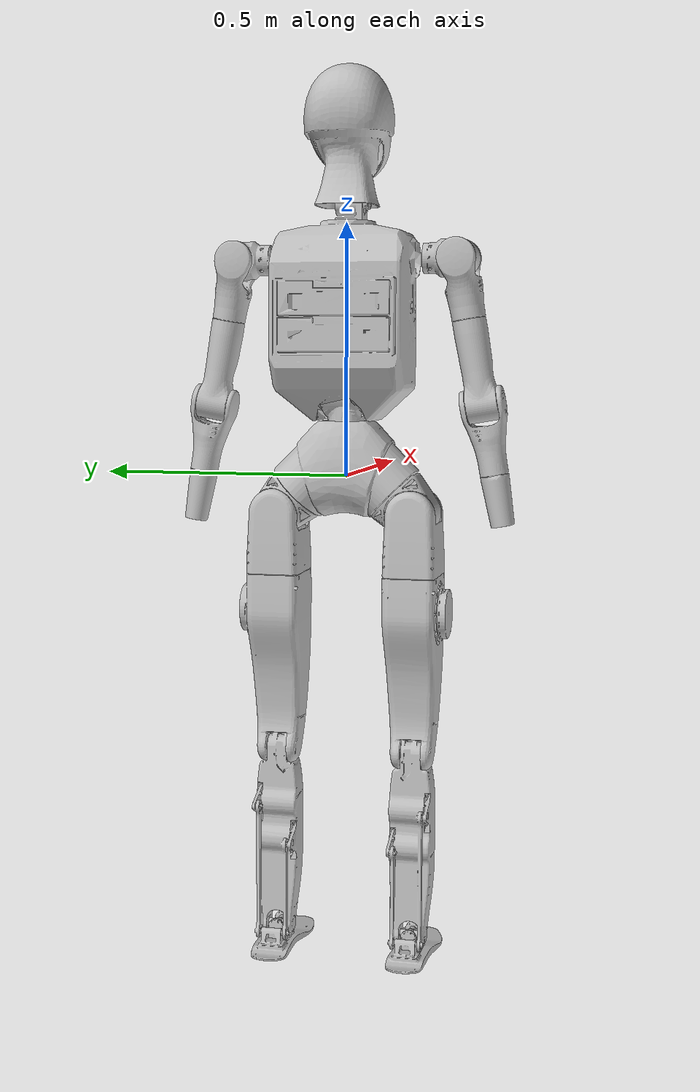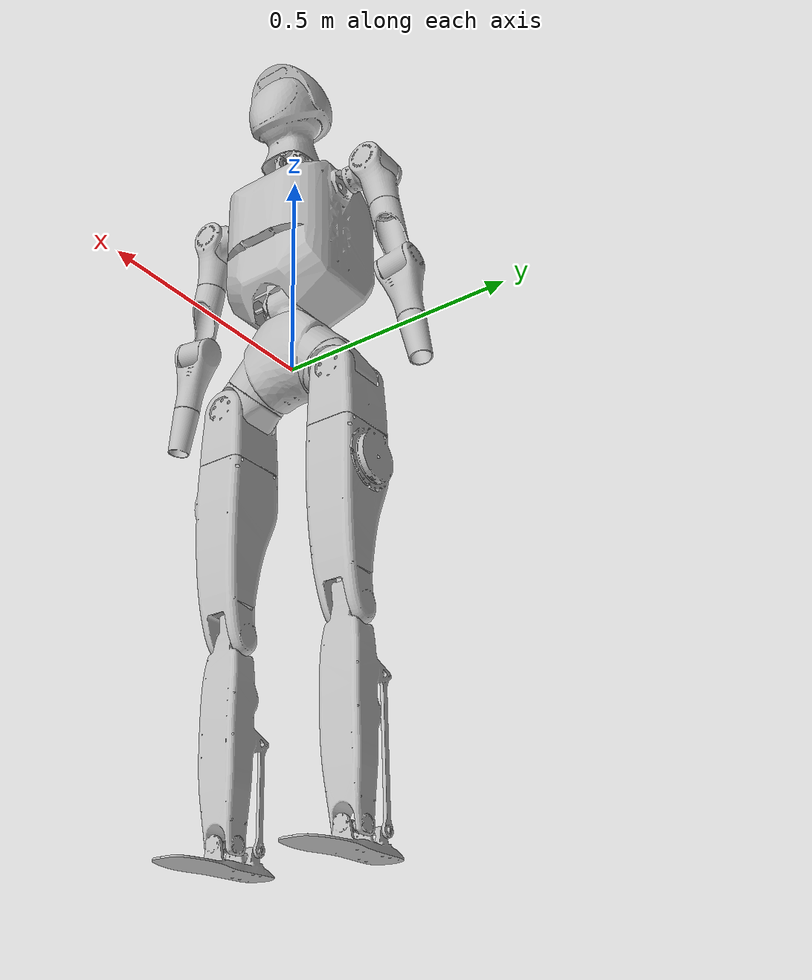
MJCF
<mujoco model="Z01">
  <compiler angle="radian" meshdir="assets/" autolimits="true"/>
  <statistic center="1.0 0.7 1.0" extent="0.8"/>
  <option integrator="implicitfast"/>
  <default>
    <geom contype="2" conaffinity="1"/>
  </default>
  <visual>
    <headlight diffuse="0.6 0.6 0.6" ambient="0.1 0.1 0.1" specular="0.9 0.9 0.9"/>
    <rgba haze="0.15 0.25 0.35 1"/>
    <global azimuth="-140" elevation="-20"/>
  </visual>

  <asset>
    <mesh name="base_link" file="base_link.STL"/>
    <mesh name="left_hip_pitch_link" file="left_hip_pitch_link.STL"/>
    <mesh name="left_hip_roll_link" file="left_hip_roll_link.STL"/>
    <mesh name="left_hip_yaw_link" file="left_hip_yaw_link.STL"/>
    <mesh name="left_knee_pitch_link" file="left_knee_pitch_link.STL"/>
    <mesh name="left_ankle_pitch_link" file="left_ankle_pitch_link.STL"/>
    <mesh name="left_ankle_roll_link" file="left_ankle_roll_link.STL"/>
    <mesh name="right_hip_pitch_link" file="right_hip_pitch_link.STL"/>
    <mesh name="right_hip_roll_link" file="right_hip_roll_link.STL"/>
    <mesh name="right_hip_yaw_link" file="right_hip_yaw_link.STL"/>
    <mesh name="right_knee_pitch_link" file="right_knee_pitch_link.STL"/>
    <mesh name="right_ankle_pitch_link" file="right_ankle_pitch_link.STL"/>
    <mesh name="right_ankle_roll_link" file="right_ankle_roll_link.STL"/>
    <mesh name="waist_yaw_link" file="waist_yaw_link.STL"/>
    <mesh name="waist_pitch_link" file="waist_pitch_link.STL"/>
    <mesh name="left_shoulder_pitch_link" file="left_shoulder_pitch_link.STL"/>
    <mesh name="left_shoulder_roll_link" file="left_shoulder_roll_link.STL"/>
    <mesh name="left_elbow_yaw_link" file="left_elbow_yaw_link.STL"/>
    <mesh name="left_elbow_pitch_link" file="left_elbow_pitch_link.STL"/>
    <mesh name="left_wrist_yaw_link" file="left_wrist_yaw_link.STL"/>
    <mesh name="right_shoulder_pitch_link" file="right_shoulder_pitch_link.STL"/>
    <mesh name="right_shoulder_roll_link" file="right_shoulder_roll_link.STL"/>
    <mesh name="right_elbow_yaw_link" file="right_elbow_yaw_link.STL"/>
    <mesh name="right_elbow_pitch_link" file="right_elbow_pitch_link.STL"/>
    <mesh name="right_wrist_yaw_link" file="right_wrist_yaw_link.STL"/>
    <mesh name="head_yaw_link" file="head_yaw_link.STL"/>
    <mesh name="head_pitch_link" file="head_pitch_link.STL"/>
    <mesh name="head_roll_link" file="head_roll_link.STL"/>
  </asset>

  <worldbody>
    <body name="base_link">
      <inertial pos="-5.2031e-05 -2.0533e-06 0.0020481" quat="0.705827 0.708372 -0.00255144 0.00343983" mass="5.0523" diaginertia="0.0188432 0.0160028 0.0124069"/>
      <joint name="floating_base_joint" type="free"/>
      <geom type="mesh" contype="0" conaffinity="0" group="1" density="0" rgba="0.75294 0.75294 0.75294 1" mesh="base_link"/>
      <geom name="base_link_collision" type="mesh" rgba="0.75294 0.75294 0.75294 1" mesh="base_link"/>
      <site name="base_imu_site" pos="0 0 0" size="0.01"/>
      <body name="left_hip_pitch_link" pos="0 0.0959544 -0.0322644" quat="0.92388 -0.382683 0 0">
        <inertial pos="0.00545388 0.0462565 7.28028e-05" quat="0.999352 0.0142492 0.00230312 0.0329881" mass="2.13147" diaginertia="0.00334989 0.00265389 0.00222559"/>
        <joint name="left_hip_pitch" pos="0 0 0" axis="0 1 0" range="-1.57 1.57" actuatorfrcrange="-330 330"/>
        <geom type="mesh" contype="0" conaffinity="0" group="1" density="0" rgba="0.752941 0.752941 0.752941 1" mesh="left_hip_pitch_link"/>
        <geom name="left_hip_pitch_link_collision" type="mesh" rgba="0.752941 0.752941 0.752941 1" mesh="left_hip_pitch_link"/>
        <body name="left_hip_roll_link" pos="0 0.0593 0" quat="0.92388 0.382683 0 0">
          <inertial pos="-0.000641176 0.00052454 -0.0618598" quat="0.99998 0.00342601 0.00520615 0.00104279" mass="3.11222" diaginertia="0.00735623 0.00586125 0.0038922"/>
          <joint name="left_hip_roll" pos="0 0 0" axis="1 0 0" range="-0.17 0.78" actuatorfrcrange="-70 70"/>
          <geom type="mesh" contype="0" conaffinity="0" group="1" density="0" rgba="0.752941 0.752941 0.752941 1" mesh="left_hip_roll_link"/>
          <geom name="left_hip_roll_link_collision" type="mesh" rgba="0.752941 0.752941 0.752941 1" mesh="left_hip_roll_link"/>
          <body name="left_hip_yaw_link" pos="0 0 -0.119">
            <inertial pos="0.00420803 0.0049643 -0.149584" quat="0.709649 0.0185723 0.0248893 0.703871" mass="5.39307" diaginertia="0.0522609 0.0466793 0.00861801"/>
            <joint name="left_hip_yaw" pos="0 0 0" axis="0 0 1" range="-0.52 0.52" actuatorfrcrange="-70 70"/>
            <geom type="mesh" contype="0" conaffinity="0" group="1" density="0" rgba="0.752941 0.752941 0.752941 1" mesh="left_hip_yaw_link"/>
            <geom name="left_hip_yaw_link_collision" type="mesh" rgba="0.752941 0.752941 0.752941 1" mesh="left_hip_yaw_link"/>
            <body name="left_knee_pitch_link" pos="0 0 -0.363">
              <inertial pos="-0.00317674 0.000243977 -0.166286" quat="0.705967 -0.00249688 -0.00197445 0.708237" mass="4.85718" diaginertia="0.0259128 0.0251601 0.00202454"/>
              <joint name="left_knee_pitch" pos="0 0 0" axis="0 1 0" range="-1.57 0" actuatorfrcrange="-330 330"/>
              <geom type="mesh" contype="0" conaffinity="0" group="1" density="0" rgba="0.752941 0.752941 0.752941 1" mesh="left_knee_pitch_link"/>
              <geom name="left_knee_pitch_link_collision" type="mesh" rgba="0.752941 0.752941 0.752941 1" mesh="left_knee_pitch_link"/>
              <body name="left_ankle_pitch_link" pos="0 0 -0.374">
                <inertial pos="2.08791e-09 1.7862e-09 0" quat="0 0.707107 0 0.707107" mass="0.125704" diaginertia="3.44419e-05 2.12238e-05 1.66569e-05"/>
                <joint name="left_ankle_pitch" pos="0 0 0" axis="0 1 0" range="-0.68 0.68" actuatorfrcrange="-75 75"/>
                <geom type="mesh" contype="0" conaffinity="0" group="1" density="0" rgba="0.752941 0.752941 0.752941 1" mesh="left_ankle_pitch_link"/>
                <geom name="left_ankle_pitch_link_collision" type="mesh" rgba="0.752941 0.752941 0.752941 1" mesh="left_ankle_pitch_link"/>
                <body name="left_ankle_roll_link">
                  <inertial pos="-0.0104011 0.000724835 -0.0257983" quat="-0.00175044 0.699096 0.00517645 0.715007" mass="0.957892" diaginertia="0.00231277 0.00204591 0.000410361"/>
                  <joint name="left_ankle_roll" pos="0 0 0" axis="1 0 0" range="-0.25 0.25" actuatorfrcrange="-75 75"/>
                  <geom type="mesh" contype="0" conaffinity="0" group="1" density="0" rgba="0.752941 0.752941 0.752941 1" mesh="left_ankle_roll_link"/>
                  <geom name="left_ankle_roll_link_collision" type="mesh" rgba="0.752941 0.752941 0.752941 1" mesh="left_ankle_roll_link"/>
                  <site name="left_ankle_site" pos="0 0 0" size="0.01"/>
                </body>
              </body>
            </body>
          </body>
        </body>
      </body>
      <body name="right_hip_pitch_link" pos="0 -0.0959544 -0.0322644" quat="0.92388 0.382683 0 0">
        <inertial pos="0.00542316 -0.0462208 7.08223e-05" quat="0.999354 -0.0119464 0.00223516 -0.0338194" mass="2.13366" diaginertia="0.00335098 0.0026569 0.00222699"/>
        <joint name="right_hip_pitch" pos="0 0 0" axis="0 1 0" range="-1.57 1.57" actuatorfrcrange="-330 330"/>
        <geom type="mesh" contype="0" conaffinity="0" group="1" density="0" rgba="0.752941 0.752941 0.752941 1" mesh="right_hip_pitch_link"/>
        <geom name="right_hip_pitch_link_collision" type="mesh" rgba="0.752941 0.752941 0.752941 1" mesh="right_hip_pitch_link"/>
        <body name="right_hip_roll_link" pos="0 -0.0593 0" quat="0.92388 -0.382683 0 0">
          <inertial pos="-0.000641017 -0.000524617 -0.0618597" quat="0.99998 -0.00342453 0.00520239 -0.000641927" mass="3.11226" diaginertia="0.00735686 0.00586083 0.00389221"/>
          <joint name="right_hip_roll" pos="0 0 0" axis="1 0 0" range="-0.78 0.17" actuatorfrcrange="-70 70"/>
          <geom type="mesh" contype="0" conaffinity="0" group="1" density="0" rgba="0.752941 0.752941 0.752941 1" mesh="right_hip_roll_link"/>
          <geom name="right_hip_roll_link_collision" type="mesh" rgba="0.752941 0.752941 0.752941 1" mesh="right_hip_roll_link"/>
          <body name="right_hip_yaw_link" pos="0 0 -0.119">
            <inertial pos="0.00420844 -0.00496649 -0.149581" quat="0.703874 0.0248999 0.0185816 0.709645" mass="5.39294" diaginertia="0.0522607 0.0466788 0.00861846"/>
            <joint name="right_hip_yaw" pos="0 0 0" axis="0 0 1" range="-0.52 0.52" actuatorfrcrange="-70 70"/>
            <geom type="mesh" contype="0" conaffinity="0" group="1" density="0" rgba="0.752941 0.752941 0.752941 1" mesh="right_hip_yaw_link"/>
            <geom name="right_hip_yaw_link_collision" type="mesh" rgba="0.752941 0.752941 0.752941 1" mesh="right_hip_yaw_link"/>
            <body name="right_knee_pitch_link" pos="0 0 -0.363">
              <inertial pos="-0.00317261 -0.000244187 -0.166286" quat="0.708245 -0.00197035 -0.00248779 0.70596" mass="4.85728" diaginertia="0.0259141 0.0251615 0.00202439"/>
              <joint name="right_knee_pitch" pos="0 0 0" axis="0 1 0" range="0 1.57" actuatorfrcrange="-330 330"/>
              <geom type="mesh" contype="0" conaffinity="0" group="1" density="0" rgba="0.752941 0.752941 0.752941 1" mesh="right_knee_pitch_link"/>
              <geom name="right_knee_pitch_link_collision" type="mesh" rgba="0.752941 0.752941 0.752941 1" mesh="right_knee_pitch_link"/>
              <body name="right_ankle_pitch_link" pos="0 0 -0.374">
                <inertial pos="2.08789e-09 -1.68818e-09 0" quat="0 0.707107 0 0.707107" mass="0.125704" diaginertia="3.44419e-05 2.12238e-05 1.66569e-05"/>
                <joint name="right_ankle_pitch" pos="0 0 0" axis="0 1 0" range="-0.68 0.68" actuatorfrcrange="-75 75"/>
                <geom type="mesh" contype="0" conaffinity="0" group="1" density="0" rgba="0.752941 0.752941 0.752941 1" mesh="right_ankle_pitch_link"/>
                <geom name="right_ankle_pitch_link_collision" type="mesh" rgba="0.752941 0.752941 0.752941 1" mesh="right_ankle_pitch_link"/>
                <body name="right_ankle_roll_link">
                  <inertial pos="-0.0104043 -0.000724471 -0.0257983" quat="0.00175308 0.699094 -0.00518639 0.715009" mass="0.957884" diaginertia="0.00231219 0.00204533 0.000410363"/>
                  <joint name="right_ankle_roll" pos="0 0 0" axis="1 0 0" range="-0.25 0.25" actuatorfrcrange="-75 75"/>
                  <geom type="mesh" contype="0" conaffinity="0" group="1" density="0" rgba="0.752941 0.752941 0.752941 1" mesh="right_ankle_roll_link"/>
                  <geom name="right_ankle_roll_link_collision" type="mesh" rgba="0.752941 0.752941 0.752941 1" mesh="right_ankle_roll_link"/>
                  <site name="right_ankle_site" pos="0 0 0" size="0.01"/>
                </body>
              </body>
            </body>
          </body>
        </body>
      </body>
      <body name="waist_yaw_link" pos="0 0 0.109061">
        <inertial pos="0.00064155 -0.0017701 0.047829" quat="0.698929 0.142762 -0.123809 0.689774" mass="0.79875" diaginertia="0.000917587 0.000813453 0.00071491"/>
        <joint name="waist_yaw" pos="0 0 0" axis="0 0 1" range="-1.57 1.57" actuatorfrcrange="-102 102"/>
        <geom type="mesh" contype="0" conaffinity="0" group="1" density="0" rgba="0.75294 0.75294 0.75294 1" mesh="waist_yaw_link"/>
        <geom name="waist_yaw_link_collision" type="mesh" rgba="0.75294 0.75294 0.75294 1" mesh="waist_yaw_link"/>
        <body name="waist_pitch_link" pos="0 0 0.055">
          <inertial pos="-0.00180836 0.00191888 0.196273" quat="0.500421 0.501947 -0.499168 0.498458" mass="14.6195" diaginertia="0.0448734 0.0369676 0.0223867"/>
          <joint name="waist_pitch" pos="0 0 0" axis="0 1 0" range="-0.78 0.78" actuatorfrcrange="-102 102"/>
          <geom type="mesh" contype="0" conaffinity="0" group="1" density="0" rgba="0.752941 0.752941 0.752941 1" mesh="waist_pitch_link"/>
          <geom name="waist_pitch_link_collision" type="mesh" rgba="0.752941 0.752941 0.752941 1" mesh="waist_pitch_link"/>
          <body name="left_shoulder_pitch_link" pos="0 0.164 0.2634">
            <inertial pos="-0.00146791 0.036516 -0.00015766" quat="0.704665 0.708713 0.0245326 0.023894" mass="0.310709" diaginertia="0.000378752 0.000298216 0.000273607"/>
            <joint name="left_shoulder_pitch" pos="0 0 0" axis="0 1 0" range="-2.09 1.57" actuatorfrcrange="-66 66"/>
            <geom type="mesh" contype="0" conaffinity="0" group="1" density="0" rgba="0.752941 0.752941 0.752941 1" mesh="left_shoulder_pitch_link"/>
            <geom name="left_shoulder_pitch_link_collision" type="mesh" rgba="0.752941 0.752941 0.752941 1" mesh="left_shoulder_pitch_link"/>
            <body name="left_shoulder_roll_link" pos="0 0.058 0" quat="0.996195 0.0871557 0 0">
              <inertial pos="0.00112649 0.00104716 -0.0410045" quat="0.990167 -0.00534074 -0.13944 0.00990619" mass="0.486656" diaginertia="0.00104983 0.000968381 0.00035721"/>
              <joint name="left_shoulder_roll" pos="0 0 0" axis="1 0 0" range="-0.1 2.96" actuatorfrcrange="-66 66"/>
              <geom type="mesh" contype="0" conaffinity="0" group="1" density="0" rgba="0.752941 0.752941 0.752941 1" mesh="left_shoulder_roll_link"/>
              <geom name="left_shoulder_roll_link_collision" type="mesh" rgba="0.752941 0.752941 0.752941 1" mesh="left_shoulder_roll_link"/>
              <body name="left_elbow_yaw_link" pos="0 0 -0.1281">
                <inertial pos="-0.00554941 -0.000271139 -0.089972" quat="0.823299 -0.0172167 -0.00178683 0.567343" mass="0.410618" diaginertia="0.00177393 0.001768 0.00031978"/>
                <joint name="left_elbow_yaw" pos="0 0 0" axis="0 0 1" range="-1.57 1.57" actuatorfrcrange="-34 34"/>
                <geom type="mesh" contype="0" conaffinity="0" group="1" density="0" rgba="0.752941 0.752941 0.752941 1" mesh="left_elbow_yaw_link"/>
                <geom name="left_elbow_yaw_link_collision" type="mesh" rgba="0.752941 0.752941 0.752941 1" mesh="left_elbow_yaw_link"/>
                <body name="left_elbow_pitch_link" pos="0 0 -0.1609">
                  <inertial pos="-6.26968e-09 0.000558933 -0.0598087" quat="0.70249 0.0808427 -0.0808395 0.702451" mass="0.514285" diaginertia="0.00080022 0.000750395 0.000252897"/>
                  <joint name="left_elbow_pitch" pos="0 0 0" axis="0 1 0" range="-2.27 1.57" actuatorfrcrange="-34 34"/>
                  <geom type="mesh" contype="0" conaffinity="0" group="1" density="0" rgba="0.752941 0.752941 0.752941 1" mesh="left_elbow_pitch_link"/>
                  <geom name="left_elbow_pitch_link_collision" type="mesh" rgba="0.752941 0.752941 0.752941 1" mesh="left_elbow_pitch_link"/>
                  <body name="left_wrist_yaw_link" pos="0 0 -0.1415">
                    <inertial pos="5.68108e-12 0 -0.035612" mass="0.200063" diaginertia="0.000205855 0.000205855 0.000110163"/>
                    <joint name="left_wrist_yaw" pos="0 0 0" axis="0 0 1" range="-1.57 1.57" actuatorfrcrange="-11 11"/>
                    <geom type="mesh" contype="0" conaffinity="0" group="1" density="0" rgba="0.752941 0.752941 0.752941 1" mesh="left_wrist_yaw_link"/>
                    <geom name="left_wrist_yaw_link_collision" type="mesh" rgba="0.752941 0.752941 0.752941 1" mesh="left_wrist_yaw_link"/>
                  </body>
                </body>
              </body>
            </body>
          </body>
          <body name="right_shoulder_pitch_link" pos="0 -0.164 0.2634">
            <inertial pos="-0.00146791 -0.036516 0.00015766" quat="0.704665 0.708713 -0.0245326 -0.023894" mass="0.310709" diaginertia="0.000378752 0.000298216 0.000273607"/>
            <joint name="right_shoulder_pitch" pos="0 0 0" axis="0 1 0" range="-1.57 2.27" actuatorfrcrange="-66 66"/>
            <geom type="mesh" contype="0" conaffinity="0" group="1" density="0" rgba="0.752941 0.752941 0.752941 1" mesh="right_shoulder_pitch_link"/>
            <geom name="right_shoulder_pitch_link_collision" type="mesh" rgba="0.752941 0.752941 0.752941 1" mesh="right_shoulder_pitch_link"/>
            <body name="right_shoulder_roll_link" pos="0 -0.058 0" quat="0.996195 -0.0871557 0 0">
              <inertial pos="0.0011264 -0.00101547 -0.0410045" quat="0.990167 0.00534115 -0.139439 -0.00990621" mass="0.486655" diaginertia="0.00104983 0.000968379 0.00035721"/>
              <joint name="right_shoulder_roll" pos="0 0 0" axis="1 0 0" range="-2.96 0.1" actuatorfrcrange="-66 66"/>
              <geom type="mesh" contype="0" conaffinity="0" group="1" density="0" rgba="0.752941 0.752941 0.752941 1" mesh="right_shoulder_roll_link"/>
              <geom name="right_shoulder_roll_link_collision" type="mesh" rgba="0.752941 0.752941 0.752941 1" mesh="right_shoulder_roll_link"/>
              <body name="right_elbow_yaw_link" pos="0 5e-05 -0.1281">
                <inertial pos="-0.0056495 0.000271246 -0.0903461" quat="0.560412 -0.00164475 -0.0171167 0.828036" mass="0.41062" diaginertia="0.00177396 0.00176842 0.000319338"/>
                <joint name="right_elbow_yaw" pos="0 0 0" axis="0 0 1" range="-1.57 1.57" actuatorfrcrange="-34 34"/>
                <geom type="mesh" contype="0" conaffinity="0" group="1" density="0" rgba="0.752941 0.752941 0.752941 1" mesh="right_elbow_yaw_link"/>
                <geom name="right_elbow_yaw_link_collision" type="mesh" rgba="0.752941 0.752941 0.752941 1" mesh="right_elbow_yaw_link"/>
                <body name="right_elbow_pitch_link" pos="0 0 -0.1609">
                  <inertial pos="4.73962e-09 -0.000558934 -0.0598087" quat="0.70249 -0.0808428 0.0808395 0.702451" mass="0.514285" diaginertia="0.00080022 0.000750395 0.000252897"/>
                  <joint name="right_elbow_pitch" pos="0 0 0" axis="0 1 0" range="-1.57 2.27" actuatorfrcrange="-34 34"/>
                  <geom type="mesh" contype="0" conaffinity="0" group="1" density="0" rgba="0.752941 0.752941 0.752941 1" mesh="right_elbow_pitch_link"/>
                  <geom name="right_elbow_pitch_link_collision" type="mesh" rgba="0.752941 0.752941 0.752941 1" mesh="right_elbow_pitch_link"/>
                  <body name="right_wrist_yaw_link" pos="0 0 -0.1415">
                    <inertial pos="-4.92808e-12 0 -0.035612" mass="0.200063" diaginertia="0.000205855 0.000205855 0.000110163"/>
                    <joint name="right_wrist_yaw" pos="0 0 0" axis="0 0 1" range="-1.57 1.57" actuatorfrcrange="-11 11"/>
                    <geom type="mesh" contype="0" conaffinity="0" group="1" density="0" rgba="0.752941 0.752941 0.752941 1" mesh="right_wrist_yaw_link"/>
                    <geom name="right_wrist_yaw_link_collision" type="mesh" rgba="0.752941 0.752941 0.752941 1" mesh="right_wrist_yaw_link"/>
                  </body>
                </body>
              </body>
            </body>
          </body>
          <body name="head_yaw_link" pos="0 0 0.332">
            <inertial pos="0 -0.0227008 0.0432654" quat="0.691758 -0.14653 0.14653 0.691758" mass="0.258664" diaginertia="0.000130167 0.000129656 6.97225e-05"/>
            <joint name="head_yaw" pos="0 0 0" axis="0 0 -1" range="-1.57 1.57" actuatorfrcrange="-11 11"/>
            <geom type="mesh" contype="0" conaffinity="0" group="1" density="0" rgba="0.752941 0.752941 0.752941 1" mesh="head_yaw_link"/>
            <geom name="head_yaw_link_collision" type="mesh" rgba="0.752941 0.752941 0.752941 1" mesh="head_yaw_link"/>
            <body name="head_pitch_link" pos="0 0 0.082">
              <inertial pos="0.00374549 -0.00907247 0" quat="0.198873 0.678564 -0.198873 0.678564" mass="0.13405" diaginertia="4.48805e-05 4.20506e-05 2.82698e-05"/>
              <joint name="head_pitch" pos="0 0 0" axis="0 -1 0" range="-0.34 0.34" actuatorfrcrange="-4.8 4.8"/>
              <geom type="mesh" contype="0" conaffinity="0" group="1" density="0" rgba="0.752941 0.752941 0.752941 1" mesh="head_pitch_link"/>
              <geom name="head_pitch_link_collision" type="mesh" rgba="0.752941 0.752941 0.752941 1" mesh="head_pitch_link"/>
              <body name="head_roll_link" pos="0.026 -0.0005 0">
                <inertial pos="0.0255074 0.000498596 0.0936258" quat="0.992117 0.046517 0.116187 -0.00636454" mass="1.19844" diaginertia="0.0046481 0.00366936 0.00348896"/>
                <joint name="head_roll" pos="0 0 0" axis="1 0 0" range="-0.52 0.52" actuatorfrcrange="-4.8 4.8"/>
                <geom type="mesh" contype="0" conaffinity="0" group="1" density="0" rgba="0.752941 0.752941 0.752941 1" mesh="head_roll_link"/>
                <geom name="head_roll_link_collision" type="mesh" rgba="0.752941 0.752941 0.752941 1" mesh="head_roll_link"/>
              </body>
            </body>
          </body>
        </body>
      </body>
    </body>
  </worldbody>
  <contact>
    <exclude body1="base_link" body2="left_hip_roll_link"/>
    <exclude body1="base_link" body2="right_hip_roll_link"/>
    <exclude body1="left_elbow_pitch_link" body2="left_wrist_yaw_link"/>
    <exclude body1="right_elbow_pitch_link" body2="right_wrist_yaw_link"/>
    <exclude body1="waist_pitch_link" body2="left_shoulder_roll_link"/>
    <exclude body1="waist_pitch_link" body2="right_shoulder_roll_link"/>
    <exclude body1="head_yaw_link" body2="left_shoulder_pitch_link"/>
    <exclude body1="head_yaw_link" body2="right_shoulder_pitch_link"/>
  </contact>
  <sensor>
    <velocimeter name="imu_lin_vel" site="base_imu_site"/>
    <gyro name="imu_ang_vel" site="base_imu_site"/>
    <framequat name="base_link_orientation" objtype="site" objname="base_imu_site"/>
    <framepos name="base_link_position" objtype="site" objname="base_imu_site"/>
    <force name="left_ankle_force" site="left_ankle_site"/>
    <velocimeter name="left_ankle_velocity" site="left_ankle_site"/>
    <force name="right_ankle_force" site="right_ankle_site"/>
    <velocimeter name="right_ankle_velocity" site="right_ankle_site"/>
  </sensor>
</mujoco>
